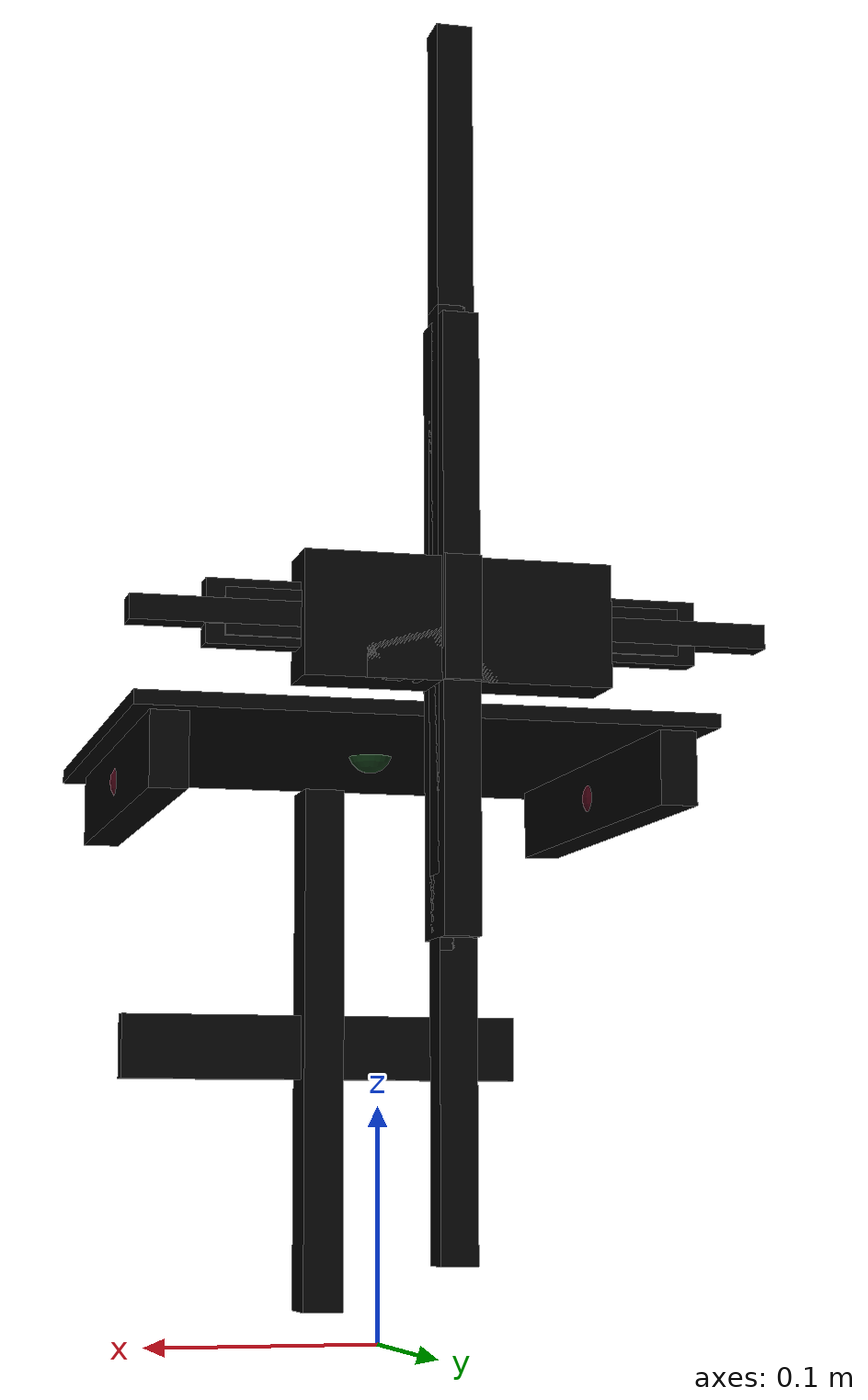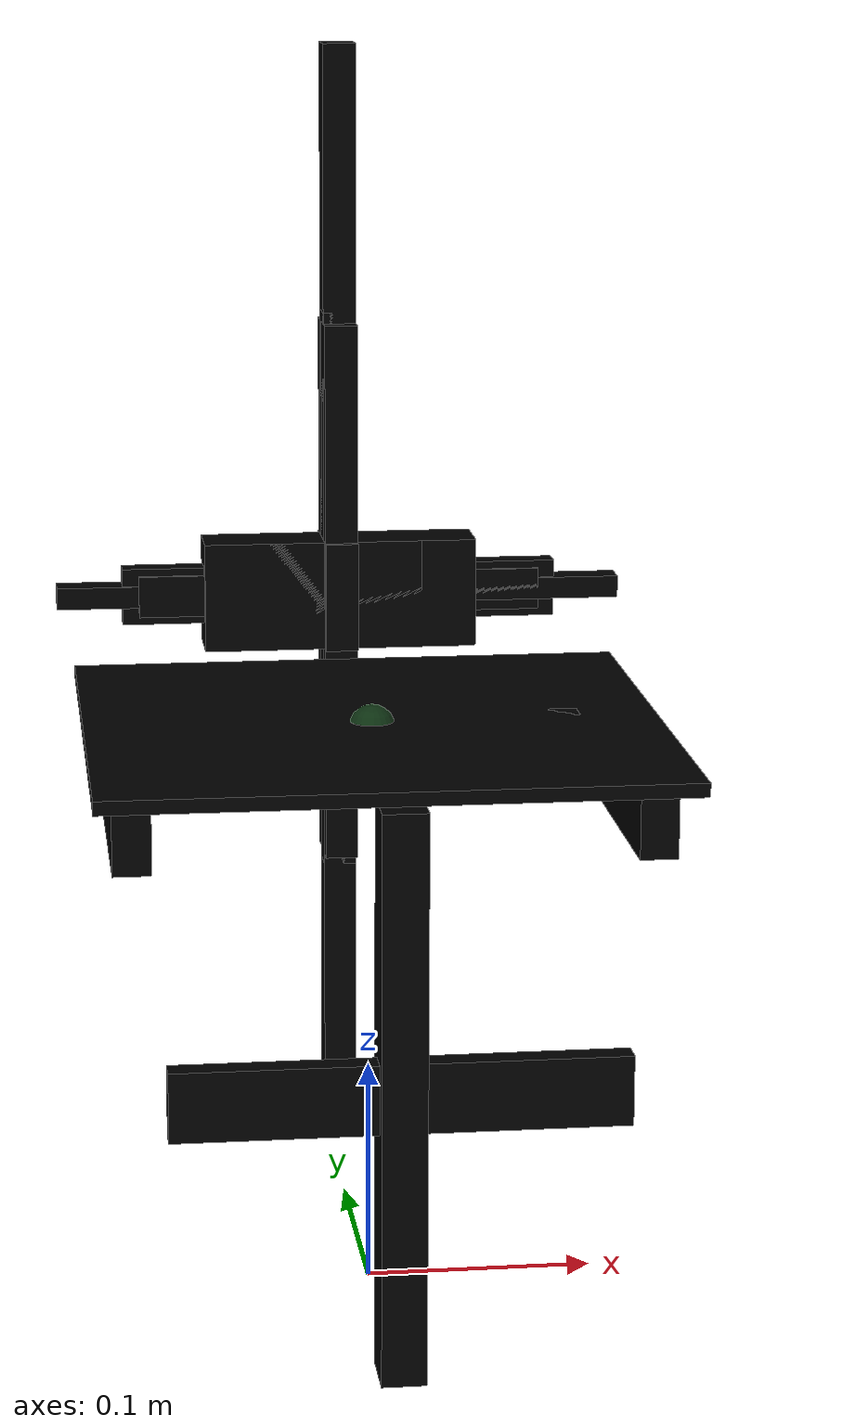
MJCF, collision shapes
<mujoco model="chair_ingolf_0650">
  <custom>
    <numeric data="0.17 0.23 0.007326 0.0 -0.0 0.70709 -0.707124" name="0_part0_initpos" />
    <numeric data="0.17 -0.22 0.024596 0.0 0.0 -0.698083 0.716017" name="4_part4_initpos" />
    <numeric data="-0.25 0.107139 0.002981 0.0 0.0 -1.0 -3.8e-05" name="3_part3_initpos" />
    <numeric data="-0.05 0.094433 0.015668 0.0 1.0 0.0 0.0" name="2_part2_initpos" />
    <numeric data="-0.45 0.091377 0.015668 0.0 1.0 0.0 0.0" name="1_part1_initpos" />
  </custom>
  <asset>
    <mesh file="chair_ingolf_0650/0.stl" name="part0" scale="0.0005 0.0005 0.0005" />
    <mesh file="chair_ingolf_0650/4.stl" name="part4" scale="0.0005 0.0005 0.0005" />
    <mesh file="chair_ingolf_0650/3.stl" name="part3" scale="0.0005 0.0005 0.0005" />
    <mesh file="chair_ingolf_0650/2.stl" name="part2" scale="0.0008 0.0005 0.0005" />
    <mesh file="chair_ingolf_0650/1.stl" name="part1" scale="0.0008 0.0005 0.0005" />
  </asset>
  <worldbody>
  <inertial mass="5.0" diaginertia="0.05 0.05 0.05" pos="0 0 0" />

  <body name="combined_body" pos="0 -0.12 0.13030154418945313" quat="1 0 0 0"><geom conaffinity="0" contype="0" density="0" mesh="part0" name="0_part0_mesh" pos="-1.5e-09 0.0 -0.0" rgba="0.82 0.71 0.55 1" type="mesh" quat="1 0 0 0" />
      <geom density="50" name="noviz_collision_0_part0_0" pos="-1.5e-09 0.0 -0.0" quat="1 0 0 0" rgba="0 0 0 0" size="0.095 0.005 0.015" solref="0.001 1" type="box" />
      <geom density="50" name="noviz_collision_0_part0_1" pos="-1.5e-09 0.0 -0.0" quat="1 0 0 0" rgba="0 0 0 0" size="0.0095 0.0125 0.1225" solref="0.001 1" type="box" />
      <geom density="50" name="noviz_collision_0_part0_2" pos="-1.5e-09 0.0 -0.0" quat="1 0 0 0" rgba="0 0 0 0" size="0.0095 0.0125 0.1225" solref="0.001 1" type="box" />
    <site group="1" name="0_part0_ltgt_site0" pos="-1.5e-09 0.0 -0.0" rgba="0 0 0 0" size="0.01 0.01 0.01" type="sphere" quat="1 0 0 0" />
      <site group="1" name="0_part0_rtgt_site0" pos="-1.5e-09 0.0 -0.0" rgba="0 0 0 0" size="0.01 0.01 0.01" type="sphere" quat="1 0 0 0" />
      <site name="0_part0_horizontal_radius_site" pos="-1.5e-09 0.0 -0.0" quat="1 0 0 0" rgba="0 0 0 0" size="0.0005" />
      <site name="0_part0_top_site" pos="-1.5e-09 0.0 -0.0" quat="1 0 0 0" rgba="0 0 0 0" size="0.0005" />
      <site name="0_part0_bottom_site" pos="-1.5e-09 0.0 -0.0" quat="1 0 0 0" rgba="0 0 0 0" size="0.0005" />
      <site name="0_part0_corner_site8" pos="-1.5e-09 0.0 -0.0" quat="1 0 0 0" rgba="0 0 0 0" size="0.01" />
      <site name="0_part0_corner_site7" pos="-1.5e-09 0.0 -0.0" quat="1 0 0 0" rgba="0 0 0 0" size="0.01" />
      <site name="0_part0_corner_site6" pos="-1.5e-09 0.0 -0.0" quat="1 0 0 0" rgba="0 0 0 0" size="0.01" />
      <site name="0_part0_corner_site5" pos="-1.5e-09 0.0 -0.0" quat="1 0 0 0" rgba="0 0 0 0" size="0.01" />
      <site name="0_part0_corner_site4" pos="-1.5e-09 0.0 -0.0" quat="1 0 0 0" rgba="0 0 0 0" size="0.01" />
      <site name="0_part0_corner_site3" pos="-1.5e-09 0.0 -0.0" quat="1 0 0 0" rgba="0 0 0 0" size="0.01" />
      <site name="0_part0_corner_site2" pos="-1.5e-09 0.0 -0.0" quat="1 0 0 0" rgba="0 0 0 0" size="0.01" />
      <site name="0_part0_corner_site1" pos="-1.5e-09 0.0 -0.0" quat="1 0 0 0" rgba="0 0 0 0" size="0.01" />
      <site name="front-side,0,conn_site2" pos="-1.5e-09 0.0 -0.0" quat="1 0 0 0" rgba="0.9019 0.0980 0.2941 0.3" size="0.01" />
      <site name="front-side,0,conn_site1" pos="-1.5e-09 0.0 -0.0" quat="1 0 0 0" rgba="0.9019 0.0980 0.2941 0.3" size="0.01" />
      <geom conaffinity="0" contype="0" density="0" mesh="part4" name="4_part4_mesh" pos="5.0049999999999995e-08 0.2449632293 0.15647654655" rgba="0.82 0.71 0.55 1" type="mesh" quat="1 0 0 0" />
      <geom density="50" name="noviz_collision_4_part4_0" pos="5.0049999999999995e-08 0.2449632293 0.15647654655" quat="1 0 0 0" rgba="0 0 0 0" size="0.0075 0.0075 0.25" solref="0.001 1" type="box" />
      <geom density="50" name="noviz_collision_4_part4_1" pos="5.0049999999999995e-08 0.2449632293 0.15647654655" quat="1 0 0 0" rgba="0 0 0 0" size="0.0075 0.0075 0.13" solref="0.001 1" type="box" />
      <geom density="50" name="noviz_collision_4_part4_2" pos="5.0049999999999995e-08 0.2449632293 0.15647654655" quat="1 0 0 0" rgba="0 0 0 0" size="0.0075 0.0075 0.1" solref="0.001 1" type="box" />
      <geom density="50" name="noviz_collision_4_part4_3" pos="5.0049999999999995e-08 0.2449632293 0.15647654655" quat="1 0 0 0" rgba="0 0 0 0" size="0.0075 0.015 0.125" solref="0.001 1" type="box" />
      <geom density="50" name="noviz_collision_4_part4_4" pos="5.0049999999999995e-08 0.2449632293 0.15647654655" quat="1 0 0 0" rgba="0 0 0 0" size="0.0075 0.0175 0.025" solref="0.001 1" type="box" />
      <geom density="50" name="noviz_collision_4_part4_5" pos="5.0049999999999995e-08 0.2449632293 0.15647654655" quat="1 0 0 0" rgba="0 0 0 0" size="0.0075 0.0075 0.25" solref="0.001 1" type="box" />
      <geom density="50" name="noviz_collision_4_part4_6" pos="5.0049999999999995e-08 0.2449632293 0.15647654655" quat="1 0 0 0" rgba="0 0 0 0" size="0.0075 0.0075 0.13" solref="0.001 1" type="box" />
      <geom density="50" name="noviz_collision_4_part4_7" pos="5.0049999999999995e-08 0.2449632293 0.15647654655" quat="1 0 0 0" rgba="0 0 0 0" size="0.0075 0.0075 0.1" solref="0.001 1" type="box" />
      <geom density="50" name="noviz_collision_4_part4_8" pos="5.0049999999999995e-08 0.2449632293 0.15647654655" quat="1 0 0 0" rgba="0 0 0 0" size="0.0075 0.015 0.125" solref="0.001 1" type="box" />
      <geom density="50" name="noviz_collision_4_part4_9" pos="5.0049999999999995e-08 0.2449632293 0.15647654655" quat="1 0 0 0" rgba="0 0 0 0" size="0.0075 0.0175 0.025" solref="0.001 1" type="box" />
      <geom density="50" name="noviz_collision_4_part4_10" pos="5.0049999999999995e-08 0.2449632293 0.15647654655" quat="1 0 0 0" rgba="0 0 0 0" size="0.1 0.005 0.013" solref="0.001 1" type="box" />
      <geom density="50" name="noviz_collision_4_part4_11" pos="5.0049999999999995e-08 0.2449632293 0.15647654655" quat="1 0 0 0" rgba="0 0 0 0" size="0.0925 0.00625 0.0095" solref="0.001 1" type="box" />
      <geom density="50" name="noviz_collision_4_part4_12" pos="5.0049999999999995e-08 0.2449632293 0.15647654655" quat="1 0 0 0" rgba="0 0 0 0" size="0.13 0.00625 0.005" solref="0.001 1" type="box" />
      <geom density="50" name="noviz_collision_4_part4_13" pos="5.0049999999999995e-08 0.2449632293 0.15647654655" quat="1 0 0 0" rgba="0 0 0 0" size="0.13 0.00625 0.005" solref="0.001 1" type="box" />
      <geom density="50" name="noviz_collision_4_part4_14" pos="5.0049999999999995e-08 0.2449632293 0.15647654655" quat="1 0 0 0" rgba="0 0 0 0" size="0.0625 0.0125 0.025" solref="0.001 1" type="box" />
      <geom density="50" name="noviz_collision_4_part4_15" pos="5.0049999999999995e-08 0.2449632293 0.15647654655" quat="1 0 0 0" rgba="0 0 0 0" size="0.0375 0.0125 0.025" solref="0.001 1" type="box" />
      <geom density="50" name="noviz_collision_4_part4_16" pos="5.0049999999999995e-08 0.2449632293 0.15647654655" quat="1 0 0 0" rgba="0 0 0 0" size="0.0375 0.0125 0.025" solref="0.001 1" type="box" />
    <site name="4_part4_horizontal_radius_site" pos="5.0049999999999995e-08 0.2449632293 0.15647654655" quat="1 0 0 0" rgba="0 0 0 0" size="0.0005" />
      <site name="4_part4_top_site" pos="5.0049999999999995e-08 0.2449632293 0.15647654655" quat="1 0 0 0" rgba="0 0 0 0" size="0.0005" />
      <site name="4_part4_bottom_site" pos="5.0049999999999995e-08 0.2449632293 0.15647654655" quat="1 0 0 0" rgba="0 0 0 0" size="0.0005" />
      <site name="4_part4_corner_site8" pos="5.0049999999999995e-08 0.2449632293 0.15647654655" quat="1 0 0 0" rgba="0 0 0 0" size="0.01" />
      <site name="4_part4_corner_site7" pos="5.0049999999999995e-08 0.2449632293 0.15647654655" quat="1 0 0 0" rgba="0 0 0 0" size="0.01" />
      <site name="4_part4_corner_site6" pos="5.0049999999999995e-08 0.2449632293 0.15647654655" quat="1 0 0 0" rgba="0 0 0 0" size="0.01" />
      <site name="4_part4_corner_site5" pos="5.0049999999999995e-08 0.2449632293 0.15647654655" quat="1 0 0 0" rgba="0 0 0 0" size="0.01" />
      <site name="4_part4_corner_site4" pos="5.0049999999999995e-08 0.2449632293 0.15647654655" quat="1 0 0 0" rgba="0 0 0 0" size="0.01" />
      <site name="4_part4_corner_site3" pos="5.0049999999999995e-08 0.2449632293 0.15647654655" quat="1 0 0 0" rgba="0 0 0 0" size="0.01" />
      <site name="4_part4_corner_site2" pos="5.0049999999999995e-08 0.2449632293 0.15647654655" quat="1 0 0 0" rgba="0 0 0 0" size="0.01" />
      <site name="4_part4_corner_site1" pos="5.0049999999999995e-08 0.2449632293 0.15647654655" quat="1 0 0 0" rgba="0 0 0 0" size="0.01" />
      <site name="back-side,0,conn_site4" pos="5.0049999999999995e-08 0.2449632293 0.15647654655" quat="1 0 0 0" rgba="0.9019 0.0980 0.2941 0.3" size="0.01" />
      <site name="back-side,0,conn_site3" pos="5.0049999999999995e-08 0.2449632293 0.15647654655" quat="1 0 0 0" rgba="0.9019 0.0980 0.2941 0.3" size="0.01" />
      <geom conaffinity="0" contype="0" density="0" mesh="part3" name="3_part3_mesh" pos="5e-11 0.10560126945000001 0.127" rgba="0.82 0.71 0.55 1" type="mesh" quat="1 0 0 0" />
      <geom density="50" name="noviz_collision_3_part3_0" pos="5e-11 0.10560126945000001 0.127" quat="1 0 0 0" rgba="0 0 0 0" size="0.123 0.113 0.003" solref="0.001 1" type="box" />
      <geom density="50" name="noviz_collision_3_part3_1" pos="5e-11 0.10560126945000001 0.127" quat="1 0 0 0" rgba="0 0 0 0" size="0.09 0.0120 0.003" solref="0.001 1" type="box" />
    <site group="1" name="3_part3_ltgt_site0" pos="5e-11 0.10560126945000001 0.127" rgba="0 0 0 0" size="0.01 0.01 0.01" type="sphere" quat="1 0 0 0" />
      <site group="1" name="3_part3_rtgt_site0" pos="5e-11 0.10560126945000001 0.127" rgba="0 0 0 0" size="0.01 0.01 0.01" type="sphere" quat="1 0 0 0" />
      <site name="3_part3_horizontal_radius_site" pos="5e-11 0.10560126945000001 0.127" quat="1 0 0 0" rgba="0 0 0 0" size="0.0005" />
      <site name="3_part3_top_site" pos="5e-11 0.10560126945000001 0.127" quat="1 0 0 0" rgba="0 0 0 0" size="0.0005" />
      <site name="3_part3_bottom_site" pos="5e-11 0.10560126945000001 0.127" quat="1 0 0 0" rgba="0 0 0 0" size="0.0005" />
      <site name="3_part3_corner_site8" pos="5e-11 0.10560126945000001 0.127" quat="1 0 0 0" rgba="0 0 0 0" size="0.01" />
      <site name="3_part3_corner_site7" pos="5e-11 0.10560126945000001 0.127" quat="1 0 0 0" rgba="0 0 0 0" size="0.01" />
      <site name="3_part3_corner_site6" pos="5e-11 0.10560126945000001 0.127" quat="1 0 0 0" rgba="0 0 0 0" size="0.01" />
      <site name="3_part3_corner_site5" pos="5e-11 0.10560126945000001 0.127" quat="1 0 0 0" rgba="0 0 0 0" size="0.01" />
      <site name="3_part3_corner_site4" pos="5e-11 0.10560126945000001 0.127" quat="1 0 0 0" rgba="0 0 0 0" size="0.01" />
      <site name="3_part3_corner_site3" pos="5e-11 0.10560126945000001 0.127" quat="1 0 0 0" rgba="0 0 0 0" size="0.01" />
      <site name="3_part3_corner_site2" pos="5e-11 0.10560126945000001 0.127" quat="1 0 0 0" rgba="0 0 0 0" size="0.01" />
      <site name="3_part3_corner_site1" pos="5e-11 0.10560126945000001 0.127" quat="1 0 0 0" rgba="0 0 0 0" size="0.01" />
      <site name="seat-side,0,180,conn_site2" pos="5e-11 0.10560126945000001 0.127" quat="1 0 0 0" rgba="0.2352 0.7058 0.2941 0.3" size="0.01" />
      <site name="seat-side,0,180,conn_site1" pos="5e-11 0.10560126945000001 0.127" quat="1 0 0 0" rgba="0.2352 0.7058 0.2941 0.3" size="0.01" />
      <geom conaffinity="0" contype="0" density="0" mesh="part2" name="2_part2_mesh" pos="0.10715625155 0.11195125805000002 0.10794999705" rgba="0.82 0.71 0.55 1" type="mesh" quat="1 0 0 0" />
      <geom density="50" name="noviz_collision_2_part2_0" pos="0.10715625155 0.11195125805000002 0.10794999705" quat="1 0 0 0" rgba="0 0 0 0" size="0.008 0.098 0.01578631" solref="0.001 1" type="box" />
    <site group="1" name="2_part2_ltgt_site0" pos="0.10715625155 0.11195125805000002 0.10794999705" rgba="0 0 0 0" size="0.01 0.01 0.01" type="sphere" quat="1 0 0 0" />
      <site group="1" name="2_part2_rtgt_site0" pos="0.10715625155 0.11195125805000002 0.10794999705" rgba="0 0 0 0" size="0.01 0.01 0.01" type="sphere" quat="1 0 0 0" />
      <site name="2_part2_horizontal_radius_site" pos="0.10715625155 0.11195125805000002 0.10794999705" quat="1 0 0 0" rgba="0 0 0 0" size="0.0005" />
      <site name="2_part2_top_site" pos="0.10715625155 0.11195125805000002 0.10794999705" quat="1 0 0 0" rgba="0 0 0 0" size="0.0005" />
      <site name="2_part2_bottom_site" pos="0.10715625155 0.11195125805000002 0.10794999705" quat="1 0 0 0" rgba="0 0 0 0" size="0.0005" />
      <site name="2_part2_corner_site8" pos="0.10715625155 0.11195125805000002 0.10794999705" quat="1 0 0 0" rgba="0 0 0 0" size="0.01" />
      <site name="2_part2_corner_site7" pos="0.10715625155 0.11195125805000002 0.10794999705" quat="1 0 0 0" rgba="0 0 0 0" size="0.01" />
      <site name="2_part2_corner_site6" pos="0.10715625155 0.11195125805000002 0.10794999705" quat="1 0 0 0" rgba="0 0 0 0" size="0.01" />
      <site name="2_part2_corner_site5" pos="0.10715625155 0.11195125805000002 0.10794999705" quat="1 0 0 0" rgba="0 0 0 0" size="0.01" />
      <site name="2_part2_corner_site4" pos="0.10715625155 0.11195125805000002 0.10794999705" quat="1 0 0 0" rgba="0 0 0 0" size="0.01" />
      <site name="2_part2_corner_site3" pos="0.10715625155 0.11195125805000002 0.10794999705" quat="1 0 0 0" rgba="0 0 0 0" size="0.01" />
      <site name="2_part2_corner_site2" pos="0.10715625155 0.11195125805000002 0.10794999705" quat="1 0 0 0" rgba="0 0 0 0" size="0.01" />
      <site name="2_part2_corner_site1" pos="0.10715625155 0.11195125805000002 0.10794999705" quat="1 0 0 0" rgba="0 0 0 0" size="0.01" />
      <site name="side-front,0,conn_site1" pos="0.10715625155 0.11195125805000002 0.10794999705" quat="1 0 0 0" rgba="0.9019 0.0980 0.2941 0.3" size="0.01" />
      <site name="side-back,0,conn_site2" pos="0.10715625155 0.11195125805000002 0.10794999705" quat="1 0 0 0" rgba="0.9019 0.0980 0.2941 0.3" size="0.01" />
      <site name="side-seat,0,180,conn_site1" pos="0.10715625155 0.11195125805000002 0.10794999705" quat="1 0 0 0" rgba="0.2352 0.7058 0.2941 0.3" size="0.01" />
      <geom conaffinity="0" contype="0" density="0" mesh="part1" name="1_part1_mesh" pos="-0.10715624985 0.11195125805000002 0.10794999705" rgba="0.82 0.71 0.55 1" type="mesh" quat="1 0 0 0" />
      <geom density="50" name="noviz_collision_1_part1_0" pos="-0.10715624985 0.11195125805000002 0.10794999705" quat="1 0 0 0" rgba="0 0 0 0" size="0.008 0.098 0.01578631" solref="0.001 1" type="box" />
    <site group="1" name="1_part1_ltgt_site0" pos="-0.10715624985 0.11195125805000002 0.10794999705" rgba="0 0 0 0" size="0.01 0.01 0.01" type="sphere" quat="1 0 0 0" />
      <site group="1" name="1_part1_rtgt_site0" pos="-0.10715624985 0.11195125805000002 0.10794999705" rgba="0 0 0 0" size="0.01 0.01 0.01" type="sphere" quat="1 0 0 0" />
      <site group="1" name="1_part1_ltgt_site1" pos="-0.10715624985 0.11195125805000002 0.10794999705" rgba="0 0 0 0" size="0.01 0.01 0.01" type="sphere" quat="1 0 0 0" />
      <site group="1" name="1_part1_rtgt_site1" pos="-0.10715624985 0.11195125805000002 0.10794999705" rgba="0 0 0 0" size="0.01 0.01 0.01" type="sphere" quat="1 0 0 0" />
      <site name="1_part1_horizontal_radius_site" pos="-0.10715624985 0.11195125805000002 0.10794999705" quat="1 0 0 0" rgba="0 0 0 0" size="0.0005" />
      <site name="1_part1_top_site" pos="-0.10715624985 0.11195125805000002 0.10794999705" quat="1 0 0 0" rgba="0 0 0 0" size="0.0005" />
      <site name="1_part1_bottom_site" pos="-0.10715624985 0.11195125805000002 0.10794999705" quat="1 0 0 0" rgba="0 0 0 0" size="0.0005" />
      <site name="1_part1_corner_site8" pos="-0.10715624985 0.11195125805000002 0.10794999705" quat="1 0 0 0" rgba="0 0 0 0" size="0.01" />
      <site name="1_part1_corner_site7" pos="-0.10715624985 0.11195125805000002 0.10794999705" quat="1 0 0 0" rgba="0 0 0 0" size="0.01" />
      <site name="1_part1_corner_site6" pos="-0.10715624985 0.11195125805000002 0.10794999705" quat="1 0 0 0" rgba="0 0 0 0" size="0.01" />
      <site name="1_part1_corner_site5" pos="-0.10715624985 0.11195125805000002 0.10794999705" quat="1 0 0 0" rgba="0 0 0 0" size="0.01" />
      <site name="1_part1_corner_site4" pos="-0.10715624985 0.11195125805000002 0.10794999705" quat="1 0 0 0" rgba="0 0 0 0" size="0.01" />
      <site name="1_part1_corner_site3" pos="-0.10715624985 0.11195125805000002 0.10794999705" quat="1 0 0 0" rgba="0 0 0 0" size="0.01" />
      <site name="1_part1_corner_site2" pos="-0.10715624985 0.11195125805000002 0.10794999705" quat="1 0 0 0" rgba="0 0 0 0" size="0.01" />
      <site name="1_part1_corner_site1" pos="-0.10715624985 0.11195125805000002 0.10794999705" quat="1 0 0 0" rgba="0 0 0 0" size="0.01" />
      <site name="side-front,0,conn_site2" pos="-0.10715624985 0.11195125805000002 0.10794999705" quat="1 0 0 0" rgba="0.9019 0.0980 0.2941 0.3" size="0.01" />
      <site name="side-back,0,conn_site1" pos="-0.10715624985 0.11195125805000002 0.10794999705" quat="1 0 0 0" rgba="0.9019 0.0980 0.2941 0.3" size="0.01" />
      <site name="side-seat,0,180,conn_site2" pos="-0.10715624985 0.11195125805000002 0.10794999705" quat="1 0 0 0" rgba="0.2352 0.7058 0.2941 0.3" size="0.01" />
      </body></worldbody><actuator />
  <sensor />
  <contact />
  <default />
</mujoco>
